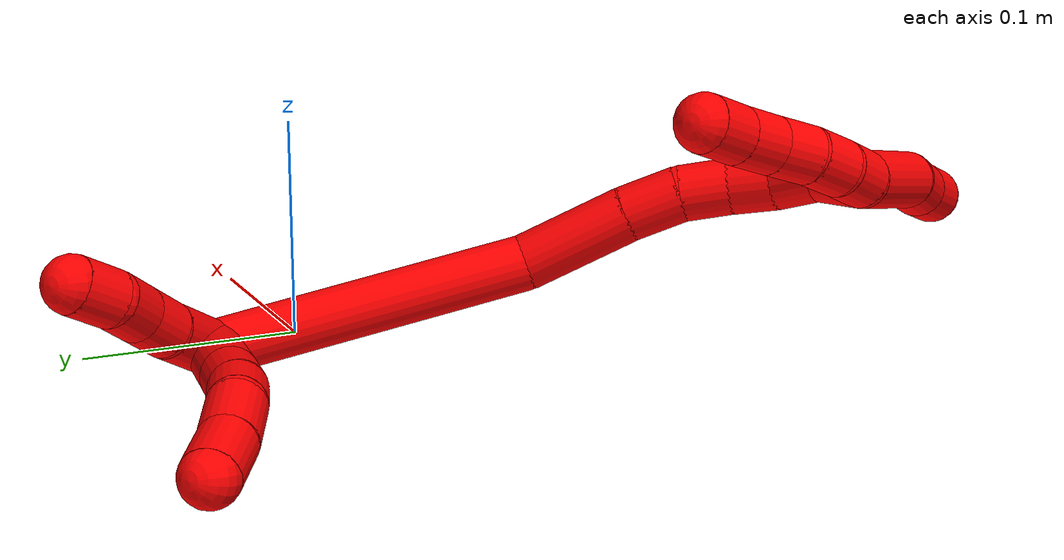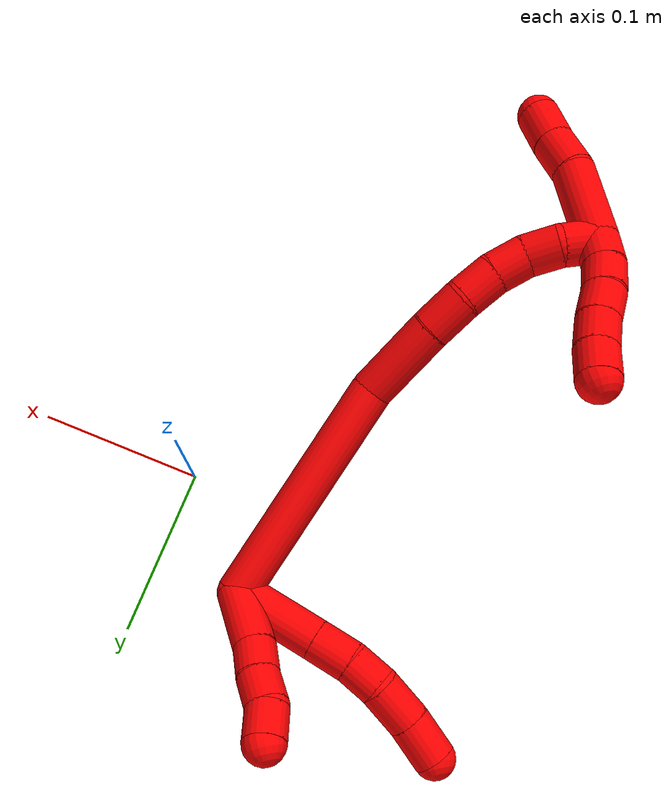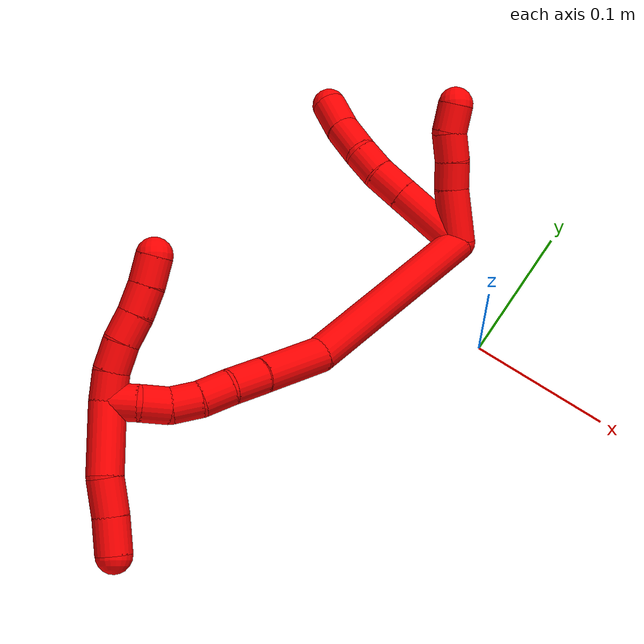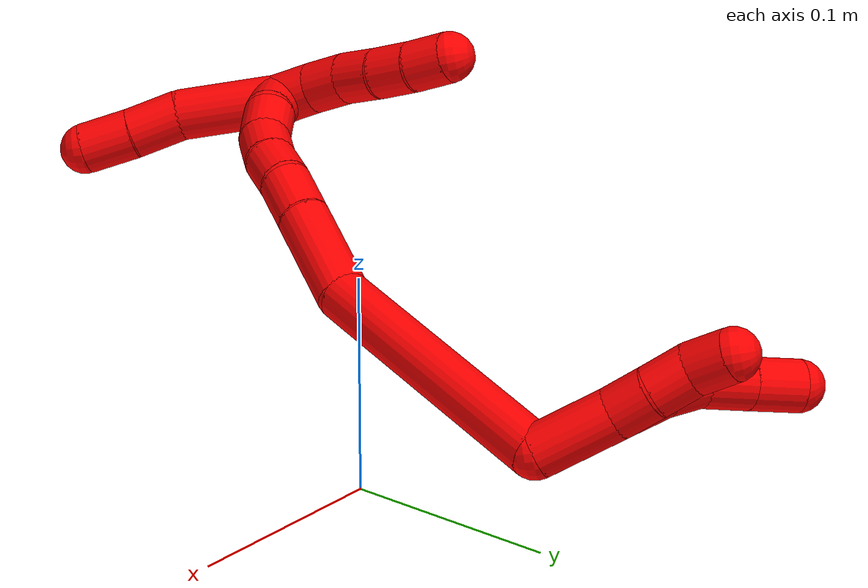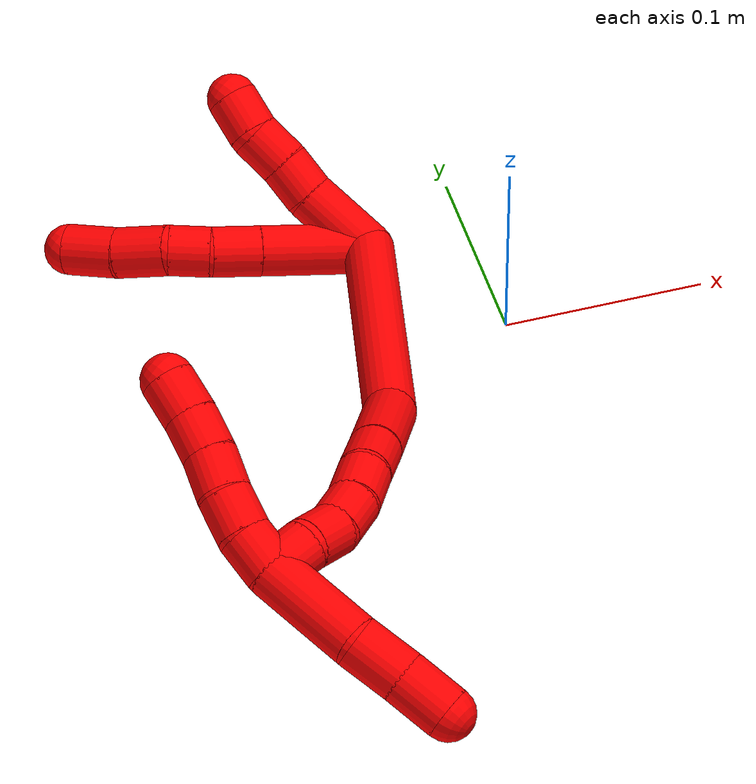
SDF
<sdf version="1.7">
 <world name="default">
  <model name="photoneo_s_sensor">
   <static>1</static>
   <pose>0 0 2 1.57079 1.57079 3.14159</pose>
   <link name="link">
    <inertial><mass>0.1</mass></inertial>
    <sensor name="sensor" type="depth">
     <update_rate>30</update_rate>
     <camera>
      <horizontal_fov>1.22</horizontal_fov>
      <image><width>1920</width><height>1200</height><format>B8G8R8</format></image>
      <clip><near>0.1</near><far>4</far></clip>
      <depth_camera><output>points</output></depth_camera>
     </camera>
     <plugin name="camera_plugin" filename="libgazebo_ros_depth_camera.so">
      <baseline>0.2</baseline>
      <alwaysOn>1</alwaysOn>
      <updateRate>0.0</updateRate>
      <cameraName>camera_ir</cameraName>
      <imageTopicName>/camera/color/image_raw</imageTopicName>
      <cameraInfoTopicName>/camera/color/camera_info</cameraInfoTopicName>
      <depthImageTopicName>/camera/depth/image_raw</depthImageTopicName>
      <depthImageCameraInfoTopicName>/camera/depth/camera_info</depthImageCameraInfoTopicName>
      <pointCloudTopicName>/camera/depth/points</pointCloudTopicName>
      <frameName>fr_optical</frameName>
      <pointCloudCutoff>0.1</pointCloudCutoff>
      <pointCloudCutoffMax>2.0</pointCloudCutoffMax>
      <distortionK1>0</distortionK1>
      <distortionK2>0</distortionK2>
      <distortionK3>0</distortionK3>
      <distortionT1>0</distortionT1>
      <distortionT2>0</distortionT2>
      <CxPrime>0</CxPrime>
      <Cx>0</Cx>
      <Cy>0</Cy>
      <focalLength>0</focalLength>
      <hackBaseline>0</hackBaseline>
     </plugin>
    </sensor>
   </link>
  </model>
  <model name="bin">
   <static>1</static>
   <link name="bottom">
    <collision name="collision-bottom">
     <pose>0 0 -0.01 0 -0 0</pose>
     <geometry><box><size>0.8 0.6 0.02</size></box></geometry>
     <surface>
      <friction><ode><mu>100</mu><mu2>100</mu2></ode></friction>
      <contact><collide_bitmask>65535</collide_bitmask></contact>
     </surface>
    </collision>
   </link>
   <link name="west_wall">
    <collision name="collision-west_wall">
     <pose>-0.41 0 0.1 0 -0 0</pose>
     <geometry><box><size>0.02 0.6 0.2</size></box></geometry>
     <surface>
      <friction><ode><mu>100</mu><mu2>100</mu2></ode></friction>
      <contact><collide_bitmask>65535</collide_bitmask></contact>
     </surface>
    </collision>
   </link>
   <link name="east_wall">
    <collision name="collision-east_wall">
     <pose>0.41 0 0.1 0 -0 0</pose>
     <geometry><box><size>0.02 0.6 0.2</size></box></geometry>
     <surface>
      <friction><ode><mu>100</mu><mu2>100</mu2></ode></friction>
      <contact><collide_bitmask>65535</collide_bitmask></contact>
     </surface>
    </collision>
   </link>
   <link name="south_wall">
    <collision name="collision-south_wall">
     <pose>0 -0.31 0.1 0 -0 0</pose>
     <geometry><box><size>0.8 0.02 0.2</size></box></geometry>
     <surface>
      <friction><ode><mu>100</mu><mu2>100</mu2></ode></friction>
      <contact><collide_bitmask>65535</collide_bitmask></contact>
     </surface>
    </collision>
   </link>
   <link name="north_wall">
    <collision name="collision-north_wall">
     <pose>0 0.31 0.1 0 -0 0</pose>
     <geometry><box><size>0.8 0.02 0.2</size></box></geometry>
     <surface>
      <friction><ode><mu>100</mu><mu2>100</mu2></ode></friction>
      <contact><collide_bitmask>65535</collide_bitmask></contact>
     </surface>
    </collision>
   </link>
  </model>
  <model name="2">
   <static>0</static>
   <link name="2">
    <collision name="collision-cylinder-e_1_2_8">
     <pose>-0.005874 -0.018274 0.018662 0.774912 -0.221209 -0.09058</pose>
     <geometry><cylinder><radius>0.0125</radius><length>0.053543</length></cylinder></geometry>
     <surface>
      <friction><ode><mu>1.16</mu><mu2>1.16</mu2><slip1>0</slip1><slip2>0</slip2></ode></friction>
      <contact><ode><kp>1e+06</kp><kd>1</kd><max_vel>0</max_vel><min_depth>0.001</min_depth></ode></contact>
     </surface>
    </collision>
    <visual name="visual-cylinder-e_1_2_8">
     <pose>-0.005874 -0.018274 0.018662 0.774912 -0.221209 -0.09058</pose>
     <geometry><cylinder><radius>0.0125</radius><length>0.053543</length></cylinder></geometry>
     <material><ambient>1 0 0 1</ambient></material>
    </visual>
    <collision name="collision-cylinder-e_2_8_9">
     <pose>-0.014408 -0.044685 0.045721 0.769558 -0.223733 -0.090921</pose>
     <geometry><cylinder><radius>0.0125</radius><length>0.023984</length></cylinder></geometry>
     <surface>
      <friction><ode><mu>1.16</mu><mu2>1.16</mu2><slip1>0</slip1><slip2>0</slip2></ode></friction>
      <contact><ode><kp>1e+06</kp><kd>1</kd><max_vel>0</max_vel><min_depth>0.001</min_depth></ode></contact>
     </surface>
    </collision>
    <visual name="visual-cylinder-e_2_8_9">
     <pose>-0.014408 -0.044685 0.045721 0.769558 -0.223733 -0.090921</pose>
     <geometry><cylinder><radius>0.0125</radius><length>0.023984</length></cylinder></geometry>
     <material><ambient>1 0 0 1</ambient></material>
    </visual>
    <collision name="collision-cylinder-e_3_9_10">
     <pose>-0.019918 -0.05845 0.062232 0.606615 -0.280911 -0.08844</pose>
     <geometry><cylinder><radius>0.0125</radius><length>0.020553</length></cylinder></geometry>
     <surface>
      <friction><ode><mu>1.16</mu><mu2>1.16</mu2><slip1>0</slip1><slip2>0</slip2></ode></friction>
      <contact><ode><kp>1e+06</kp><kd>1</kd><max_vel>0</max_vel><min_depth>0.001</min_depth></ode></contact>
     </surface>
    </collision>
    <visual name="visual-cylinder-e_3_9_10">
     <pose>-0.019918 -0.05845 0.062232 0.606615 -0.280911 -0.08844</pose>
     <geometry><cylinder><radius>0.0125</radius><length>0.020553</length></cylinder></geometry>
     <material><ambient>1 0 0 1</ambient></material>
    </visual>
    <collision name="collision-cylinder-e_4_10_11">
     <pose>-0.029231 -0.068937 0.080655 0.44032 -0.515821 -0.117927</pose>
     <geometry><cylinder><radius>0.0125</radius><length>0.026208</length></cylinder></geometry>
     <surface>
      <friction><ode><mu>1.16</mu><mu2>1.16</mu2><slip1>0</slip1><slip2>0</slip2></ode></friction>
      <contact><ode><kp>1e+06</kp><kd>1</kd><max_vel>0</max_vel><min_depth>0.001</min_depth></ode></contact>
     </surface>
    </collision>
    <visual name="visual-cylinder-e_4_10_11">
     <pose>-0.029231 -0.068937 0.080655 0.44032 -0.515821 -0.117927</pose>
     <geometry><cylinder><radius>0.0125</radius><length>0.026208</length></cylinder></geometry>
     <material><ambient>1 0 0 1</ambient></material>
    </visual>
    <collision name="collision-cylinder-e_5_11_6">
     <pose>-0.04126 -0.077468 0.101959 0.322405 -0.447745 -0.074017</pose>
     <geometry><cylinder><radius>0.0125</radius><length>0.025712</length></cylinder></geometry>
     <surface>
      <friction><ode><mu>1.16</mu><mu2>1.16</mu2><slip1>0</slip1><slip2>0</slip2></ode></friction>
      <contact><ode><kp>1e+06</kp><kd>1</kd><max_vel>0</max_vel><min_depth>0.001</min_depth></ode></contact>
     </surface>
    </collision>
    <visual name="visual-cylinder-e_5_11_6">
     <pose>-0.04126 -0.077468 0.101959 0.322405 -0.447745 -0.074017</pose>
     <geometry><cylinder><radius>0.0125</radius><length>0.025712</length></cylinder></geometry>
     <material><ambient>1 0 0 1</ambient></material>
    </visual>
    <collision name="collision-cylinder-e_1_2_12">
     <pose>0.004882 -0.003137 0.018576 0.167284 0.253571 0.021373</pose>
     <geometry><cylinder><radius>0.0125</radius><length>0.038922</length></cylinder></geometry>
     <surface>
      <friction><ode><mu>1.16</mu><mu2>1.16</mu2><slip1>0</slip1><slip2>0</slip2></ode></friction>
      <contact><ode><kp>1e+06</kp><kd>1</kd><max_vel>0</max_vel><min_depth>0.001</min_depth></ode></contact>
     </surface>
    </collision>
    <visual name="visual-cylinder-e_1_2_12">
     <pose>0.004882 -0.003137 0.018576 0.167284 0.253571 0.021373</pose>
     <geometry><cylinder><radius>0.0125</radius><length>0.038922</length></cylinder></geometry>
     <material><ambient>1 0 0 1</ambient></material>
    </visual>
    <collision name="collision-cylinder-e_2_12_13">
     <pose>0.013597 -0.006749 0.046401 0.051385 0.392363 0.010214</pose>
     <geometry><cylinder><radius>0.0125</radius><length>0.020047</length></cylinder></geometry>
     <surface>
      <friction><ode><mu>1.16</mu><mu2>1.16</mu2><slip1>0</slip1><slip2>0</slip2></ode></friction>
      <contact><ode><kp>1e+06</kp><kd>1</kd><max_vel>0</max_vel><min_depth>0.001</min_depth></ode></contact>
     </surface>
    </collision>
    <visual name="visual-cylinder-e_2_12_13">
     <pose>0.013597 -0.006749 0.046401 0.051385 0.392363 0.010214</pose>
     <geometry><cylinder><radius>0.0125</radius><length>0.020047</length></cylinder></geometry>
     <material><ambient>1 0 0 1</ambient></material>
    </visual>
    <collision name="collision-cylinder-e_3_13_14">
     <pose>0.020678 -0.008997 0.065202 0.183471 0.322763 0.02995</pose>
     <geometry><cylinder><radius>0.0125</radius><length>0.020487</length></cylinder></geometry>
     <surface>
      <friction><ode><mu>1.16</mu><mu2>1.16</mu2><slip1>0</slip1><slip2>0</slip2></ode></friction>
      <contact><ode><kp>1e+06</kp><kd>1</kd><max_vel>0</max_vel><min_depth>0.001</min_depth></ode></contact>
     </surface>
    </collision>
    <visual name="visual-cylinder-e_3_13_14">
     <pose>0.020678 -0.008997 0.065202 0.183471 0.322763 0.02995</pose>
     <geometry><cylinder><radius>0.0125</radius><length>0.020487</length></cylinder></geometry>
     <material><ambient>1 0 0 1</ambient></material>
    </visual>
    <collision name="collision-cylinder-e_4_14_5">
     <pose>0.027346 -0.009072 0.08429 -0.176156 0.339303 -0.030251</pose>
     <geometry><cylinder><radius>0.0125</radius><length>0.020545</length></cylinder></geometry>
     <surface>
      <friction><ode><mu>1.16</mu><mu2>1.16</mu2><slip1>0</slip1><slip2>0</slip2></ode></friction>
      <contact><ode><kp>1e+06</kp><kd>1</kd><max_vel>0</max_vel><min_depth>0.001</min_depth></ode></contact>
     </surface>
    </collision>
    <visual name="visual-cylinder-e_4_14_5">
     <pose>0.027346 -0.009072 0.08429 -0.176156 0.339303 -0.030251</pose>
     <geometry><cylinder><radius>0.0125</radius><length>0.020545</length></cylinder></geometry>
     <material><ambient>1 0 0 1</ambient></material>
    </visual>
    <collision name="collision-cylinder-e_1_2_15">
     <pose>0.011721 -0.054806 -0.043312 2.23958 0.166239 0.340718</pose>
     <geometry><cylinder><radius>0.0125</radius><length>0.141661</length></cylinder></geometry>
     <surface>
      <friction><ode><mu>1.16</mu><mu2>1.16</mu2><slip1>0</slip1><slip2>0</slip2></ode></friction>
      <contact><ode><kp>1e+06</kp><kd>1</kd><max_vel>0</max_vel><min_depth>0.001</min_depth></ode></contact>
     </surface>
    </collision>
    <visual name="visual-cylinder-e_1_2_15">
     <pose>0.011721 -0.054806 -0.043312 2.23958 0.166239 0.340718</pose>
     <geometry><cylinder><radius>0.0125</radius><length>0.141661</length></cylinder></geometry>
     <material><ambient>1 0 0 1</ambient></material>
    </visual>
    <collision name="collision-cylinder-e_2_15_16">
     <pose>0.031608 -0.131498 -0.095309 1.94855 0.333836 0.48642</pose>
     <geometry><cylinder><radius>0.0125</radius><length>0.049845</length></cylinder></geometry>
     <surface>
      <friction><ode><mu>1.16</mu><mu2>1.16</mu2><slip1>0</slip1><slip2>0</slip2></ode></friction>
      <contact><ode><kp>1e+06</kp><kd>1</kd><max_vel>0</max_vel><min_depth>0.001</min_depth></ode></contact>
     </surface>
    </collision>
    <visual name="visual-cylinder-e_2_15_16">
     <pose>0.031608 -0.131498 -0.095309 1.94855 0.333836 0.48642</pose>
     <geometry><cylinder><radius>0.0125</radius><length>0.049845</length></cylinder></geometry>
     <material><ambient>1 0 0 1</ambient></material>
    </visual>
    <collision name="collision-cylinder-e_3_16_17">
     <pose>0.042882 -0.164841 -0.108341 1.93343 0.248433 0.357964</pose>
     <geometry><cylinder><radius>0.0125</radius><length>0.025283</length></cylinder></geometry>
     <surface>
      <friction><ode><mu>1.16</mu><mu2>1.16</mu2><slip1>0</slip1><slip2>0</slip2></ode></friction>
      <contact><ode><kp>1e+06</kp><kd>1</kd><max_vel>0</max_vel><min_depth>0.001</min_depth></ode></contact>
     </surface>
    </collision>
    <visual name="visual-cylinder-e_3_16_17">
     <pose>0.042882 -0.164841 -0.108341 1.93343 0.248433 0.357964</pose>
     <geometry><cylinder><radius>0.0125</radius><length>0.025283</length></cylinder></geometry>
     <material><ambient>1 0 0 1</ambient></material>
    </visual>
    <collision name="collision-cylinder-e_4_17_18">
     <pose>0.046409 -0.186375 -0.116858 1.96319 0.038324 0.057328</pose>
     <geometry><cylinder><radius>0.0125</radius><length>0.021829</length></cylinder></geometry>
     <surface>
      <friction><ode><mu>1.16</mu><mu2>1.16</mu2><slip1>0</slip1><slip2>0</slip2></ode></friction>
      <contact><ode><kp>1e+06</kp><kd>1</kd><max_vel>0</max_vel><min_depth>0.001</min_depth></ode></contact>
     </surface>
    </collision>
    <visual name="visual-cylinder-e_4_17_18">
     <pose>0.046409 -0.186375 -0.116858 1.96319 0.038324 0.057328</pose>
     <geometry><cylinder><radius>0.0125</radius><length>0.021829</length></cylinder></geometry>
     <material><ambient>1 0 0 1</ambient></material>
    </visual>
    <collision name="collision-cylinder-e_5_18_19">
     <pose>0.046652 -0.206524 -0.123223 1.7853 -0.016959 -0.021051</pose>
     <geometry><cylinder><radius>0.0125</radius><length>0.020617</length></cylinder></geometry>
     <surface>
      <friction><ode><mu>1.16</mu><mu2>1.16</mu2><slip1>0</slip1><slip2>0</slip2></ode></friction>
      <contact><ode><kp>1e+06</kp><kd>1</kd><max_vel>0</max_vel><min_depth>0.001</min_depth></ode></contact>
     </surface>
    </collision>
    <visual name="visual-cylinder-e_5_18_19">
     <pose>0.046652 -0.206524 -0.123223 1.7853 -0.016959 -0.021051</pose>
     <geometry><cylinder><radius>0.0125</radius><length>0.020617</length></cylinder></geometry>
     <material><ambient>1 0 0 1</ambient></material>
    </visual>
    <collision name="collision-cylinder-e_6_19_20">
     <pose>0.047097 -0.226592 -0.12467 1.49625 0.061672 0.057241</pose>
     <geometry><cylinder><radius>0.0125</radius><length>0.02009</length></cylinder></geometry>
     <surface>
      <friction><ode><mu>1.16</mu><mu2>1.16</mu2><slip1>0</slip1><slip2>0</slip2></ode></friction>
      <contact><ode><kp>1e+06</kp><kd>1</kd><max_vel>0</max_vel><min_depth>0.001</min_depth></ode></contact>
     </surface>
    </collision>
    <visual name="visual-cylinder-e_6_19_20">
     <pose>0.047097 -0.226592 -0.12467 1.49625 0.061672 0.057241</pose>
     <geometry><cylinder><radius>0.0125</radius><length>0.02009</length></cylinder></geometry>
     <material><ambient>1 0 0 1</ambient></material>
    </visual>
    <collision name="collision-cylinder-e_7_20_1">
     <pose>0.045095 -0.246546 -0.12299 1.4773 -0.256281 -0.233591</pose>
     <geometry><cylinder><radius>0.0125</radius><length>0.020674</length></cylinder></geometry>
     <surface>
      <friction><ode><mu>1.16</mu><mu2>1.16</mu2><slip1>0</slip1><slip2>0</slip2></ode></friction>
      <contact><ode><kp>1e+06</kp><kd>1</kd><max_vel>0</max_vel><min_depth>0.001</min_depth></ode></contact>
     </surface>
    </collision>
    <visual name="visual-cylinder-e_7_20_1">
     <pose>0.045095 -0.246546 -0.12299 1.4773 -0.256281 -0.233591</pose>
     <geometry><cylinder><radius>0.0125</radius><length>0.020674</length></cylinder></geometry>
     <material><ambient>1 0 0 1</ambient></material>
    </visual>
    <collision name="collision-cylinder-e_1_1_21">
     <pose>0.044868 -0.255486 -0.1124 -0.104826 0.241668 -0.01274</pose>
     <geometry><cylinder><radius>0.0125</radius><length>0.02</length></cylinder></geometry>
     <surface>
      <friction><ode><mu>1.16</mu><mu2>1.16</mu2><slip1>0</slip1><slip2>0</slip2></ode></friction>
      <contact><ode><kp>1e+06</kp><kd>1</kd><max_vel>0</max_vel><min_depth>0.001</min_depth></ode></contact>
     </surface>
    </collision>
    <visual name="visual-cylinder-e_1_1_21">
     <pose>0.044868 -0.255486 -0.1124 -0.104826 0.241668 -0.01274</pose>
     <geometry><cylinder><radius>0.0125</radius><length>0.02</length></cylinder></geometry>
     <material><ambient>1 0 0 1</ambient></material>
    </visual>
    <collision name="collision-cylinder-e_2_21_22">
     <pose>0.050219 -0.251541 -0.093651 -0.311728 0.300212 -0.047523</pose>
     <geometry><cylinder><radius>0.0125</radius><length>0.02</length></cylinder></geometry>
     <surface>
      <friction><ode><mu>1.16</mu><mu2>1.16</mu2><slip1>0</slip1><slip2>0</slip2></ode></friction>
      <contact><ode><kp>1e+06</kp><kd>1</kd><max_vel>0</max_vel><min_depth>0.001</min_depth></ode></contact>
     </surface>
    </collision>
    <visual name="visual-cylinder-e_2_21_22">
     <pose>0.050219 -0.251541 -0.093651 -0.311728 0.300212 -0.047523</pose>
     <geometry><cylinder><radius>0.0125</radius><length>0.02</length></cylinder></geometry>
     <material><ambient>1 0 0 1</ambient></material>
    </visual>
    <collision name="collision-cylinder-e_3_22_23">
     <pose>0.055707 -0.244275 -0.07591 -0.46468 0.255891 -0.060861</pose>
     <geometry><cylinder><radius>0.0125</radius><length>0.02</length></cylinder></geometry>
     <surface>
      <friction><ode><mu>1.16</mu><mu2>1.16</mu2><slip1>0</slip1><slip2>0</slip2></ode></friction>
      <contact><ode><kp>1e+06</kp><kd>1</kd><max_vel>0</max_vel><min_depth>0.001</min_depth></ode></contact>
     </surface>
    </collision>
    <visual name="visual-cylinder-e_3_22_23">
     <pose>0.055707 -0.244275 -0.07591 -0.46468 0.255891 -0.060861</pose>
     <geometry><cylinder><radius>0.0125</radius><length>0.02</length></cylinder></geometry>
     <material><ambient>1 0 0 1</ambient></material>
    </visual>
    <collision name="collision-cylinder-e_4_23_24">
     <pose>0.060573 -0.236602 -0.058129 -0.350438 0.23566 -0.041908</pose>
     <geometry><cylinder><radius>0.0125</radius><length>0.02</length></cylinder></geometry>
     <surface>
      <friction><ode><mu>1.16</mu><mu2>1.16</mu2><slip1>0</slip1><slip2>0</slip2></ode></friction>
      <contact><ode><kp>1e+06</kp><kd>1</kd><max_vel>0</max_vel><min_depth>0.001</min_depth></ode></contact>
     </surface>
    </collision>
    <visual name="visual-cylinder-e_4_23_24">
     <pose>0.060573 -0.236602 -0.058129 -0.350438 0.23566 -0.041908</pose>
     <geometry><cylinder><radius>0.0125</radius><length>0.02</length></cylinder></geometry>
     <material><ambient>1 0 0 1</ambient></material>
    </visual>
    <collision name="collision-cylinder-e_5_24_4">
     <pose>0.065266 -0.230961 -0.039555 -0.239233 0.238015 -0.028741</pose>
     <geometry><cylinder><radius>0.0125</radius><length>0.02</length></cylinder></geometry>
     <surface>
      <friction><ode><mu>1.16</mu><mu2>1.16</mu2><slip1>0</slip1><slip2>0</slip2></ode></friction>
      <contact><ode><kp>1e+06</kp><kd>1</kd><max_vel>0</max_vel><min_depth>0.001</min_depth></ode></contact>
     </surface>
    </collision>
    <visual name="visual-cylinder-e_5_24_4">
     <pose>0.065266 -0.230961 -0.039555 -0.239233 0.238015 -0.028741</pose>
     <geometry><cylinder><radius>0.0125</radius><length>0.02</length></cylinder></geometry>
     <material><ambient>1 0 0 1</ambient></material>
    </visual>
    <collision name="collision-cylinder-e_1_1_25">
     <pose>0.042316 -0.257412 -0.146746 3.10475 -0.006452 -0.346756</pose>
     <geometry><cylinder><radius>0.0125</radius><length>0.049415</length></cylinder></geometry>
     <surface>
      <friction><ode><mu>1.16</mu><mu2>1.16</mu2><slip1>0</slip1><slip2>0</slip2></ode></friction>
      <contact><ode><kp>1e+06</kp><kd>1</kd><max_vel>0</max_vel><min_depth>0.001</min_depth></ode></contact>
     </surface>
    </collision>
    <visual name="visual-cylinder-e_1_1_25">
     <pose>0.042316 -0.257412 -0.146746 3.10475 -0.006452 -0.346756</pose>
     <geometry><cylinder><radius>0.0125</radius><length>0.049415</length></cylinder></geometry>
     <material><ambient>1 0 0 1</ambient></material>
    </visual>
    <collision name="collision-cylinder-e_2_25_26">
     <pose>0.040432 -0.256274 -0.183867 -2.97828 -0.136029 1.38832</pose>
     <geometry><cylinder><radius>0.0125</radius><length>0.025432</length></cylinder></geometry>
     <surface>
      <friction><ode><mu>1.16</mu><mu2>1.16</mu2><slip1>0</slip1><slip2>0</slip2></ode></friction>
      <contact><ode><kp>1e+06</kp><kd>1</kd><max_vel>0</max_vel><min_depth>0.001</min_depth></ode></contact>
     </surface>
    </collision>
    <visual name="visual-cylinder-e_2_25_26">
     <pose>0.040432 -0.256274 -0.183867 -2.97828 -0.136029 1.38832</pose>
     <geometry><cylinder><radius>0.0125</radius><length>0.025432</length></cylinder></geometry>
     <material><ambient>1 0 0 1</ambient></material>
    </visual>
    <collision name="collision-cylinder-e_3_26_3">
     <pose>0.03731 -0.253117 -0.208748 -3.05282 -0.111346 1.79577</pose>
     <geometry><cylinder><radius>0.0125</radius><length>0.025153</length></cylinder></geometry>
     <surface>
      <friction><ode><mu>1.16</mu><mu2>1.16</mu2><slip1>0</slip1><slip2>0</slip2></ode></friction>
      <contact><ode><kp>1e+06</kp><kd>1</kd><max_vel>0</max_vel><min_depth>0.001</min_depth></ode></contact>
     </surface>
    </collision>
    <visual name="visual-cylinder-e_3_26_3">
     <pose>0.03731 -0.253117 -0.208748 -3.05282 -0.111346 1.79577</pose>
     <geometry><cylinder><radius>0.0125</radius><length>0.025153</length></cylinder></geometry>
     <material><ambient>1 0 0 1</ambient></material>
    </visual>
    <collision name="collision-sphere-3">
     <pose>0.035913 -0.252009 -0.221197 0 -0 0</pose>
     <geometry><sphere><radius>0.0125</radius></sphere></geometry>
     <surface>
      <friction><ode><mu>1.16</mu><mu2>1.16</mu2><slip1>0</slip1><slip2>0</slip2></ode></friction>
      <contact><ode><kp>1e+06</kp><kd>1</kd><max_vel>0</max_vel><min_depth>0.001</min_depth></ode></contact>
     </surface>
    </collision>
    <visual name="visual-sphere-3">
     <pose>0.035913 -0.252009 -0.221197 0 -0 0</pose>
     <geometry><sphere><radius>0.0125</radius></sphere></geometry>
     <material><ambient>1 0 0 1</ambient></material>
    </visual>
    <collision name="collision-sphere-26">
     <pose>0.038707 -0.254225 -0.196298 0 -0 0</pose>
     <geometry><sphere><radius>0.0125</radius></sphere></geometry>
     <surface>
      <friction><ode><mu>1.16</mu><mu2>1.16</mu2><slip1>0</slip1><slip2>0</slip2></ode></friction>
      <contact><ode><kp>1e+06</kp><kd>1</kd><max_vel>0</max_vel><min_depth>0.001</min_depth></ode></contact>
     </surface>
    </collision>
    <visual name="visual-sphere-26">
     <pose>0.038707 -0.254225 -0.196298 0 -0 0</pose>
     <geometry><sphere><radius>0.0125</radius></sphere></geometry>
     <material><ambient>1 0 0 1</ambient></material>
    </visual>
    <collision name="collision-sphere-25">
     <pose>0.042156 -0.258322 -0.171436 0 -0 0</pose>
     <geometry><sphere><radius>0.0125</radius></sphere></geometry>
     <surface>
      <friction><ode><mu>1.16</mu><mu2>1.16</mu2><slip1>0</slip1><slip2>0</slip2></ode></friction>
      <contact><ode><kp>1e+06</kp><kd>1</kd><max_vel>0</max_vel><min_depth>0.001</min_depth></ode></contact>
     </surface>
    </collision>
    <visual name="visual-sphere-25">
     <pose>0.042156 -0.258322 -0.171436 0 -0 0</pose>
     <geometry><sphere><radius>0.0125</radius></sphere></geometry>
     <material><ambient>1 0 0 1</ambient></material>
    </visual>
    <collision name="collision-sphere-4">
     <pose>0.067623 -0.228658 -0.030114 0 -0 0</pose>
     <geometry><sphere><radius>0.0125</radius></sphere></geometry>
     <surface>
      <friction><ode><mu>1.16</mu><mu2>1.16</mu2><slip1>0</slip1><slip2>0</slip2></ode></friction>
      <contact><ode><kp>1e+06</kp><kd>1</kd><max_vel>0</max_vel><min_depth>0.001</min_depth></ode></contact>
     </surface>
    </collision>
    <visual name="visual-sphere-4">
     <pose>0.067623 -0.228658 -0.030114 0 -0 0</pose>
     <geometry><sphere><radius>0.0125</radius></sphere></geometry>
     <material><ambient>1 0 0 1</ambient></material>
    </visual>
    <collision name="collision-sphere-24">
     <pose>0.062908 -0.233263 -0.048997 0 -0 0</pose>
     <geometry><sphere><radius>0.0125</radius></sphere></geometry>
     <surface>
      <friction><ode><mu>1.16</mu><mu2>1.16</mu2><slip1>0</slip1><slip2>0</slip2></ode></friction>
      <contact><ode><kp>1e+06</kp><kd>1</kd><max_vel>0</max_vel><min_depth>0.001</min_depth></ode></contact>
     </surface>
    </collision>
    <visual name="visual-sphere-24">
     <pose>0.062908 -0.233263 -0.048997 0 -0 0</pose>
     <geometry><sphere><radius>0.0125</radius></sphere></geometry>
     <material><ambient>1 0 0 1</ambient></material>
    </visual>
    <collision name="collision-sphere-23">
     <pose>0.058238 -0.23994 -0.067262 0 -0 0</pose>
     <geometry><sphere><radius>0.0125</radius></sphere></geometry>
     <surface>
      <friction><ode><mu>1.16</mu><mu2>1.16</mu2><slip1>0</slip1><slip2>0</slip2></ode></friction>
      <contact><ode><kp>1e+06</kp><kd>1</kd><max_vel>0</max_vel><min_depth>0.001</min_depth></ode></contact>
     </surface>
    </collision>
    <visual name="visual-sphere-23">
     <pose>0.058238 -0.23994 -0.067262 0 -0 0</pose>
     <geometry><sphere><radius>0.0125</radius></sphere></geometry>
     <material><ambient>1 0 0 1</ambient></material>
    </visual>
    <collision name="collision-sphere-22">
     <pose>0.053176 -0.248611 -0.084559 0 -0 0</pose>
     <geometry><sphere><radius>0.0125</radius></sphere></geometry>
     <surface>
      <friction><ode><mu>1.16</mu><mu2>1.16</mu2><slip1>0</slip1><slip2>0</slip2></ode></friction>
      <contact><ode><kp>1e+06</kp><kd>1</kd><max_vel>0</max_vel><min_depth>0.001</min_depth></ode></contact>
     </surface>
    </collision>
    <visual name="visual-sphere-22">
     <pose>0.053176 -0.248611 -0.084559 0 -0 0</pose>
     <geometry><sphere><radius>0.0125</radius></sphere></geometry>
     <material><ambient>1 0 0 1</ambient></material>
    </visual>
    <collision name="collision-sphere-21">
     <pose>0.047262 -0.25447 -0.102744 0 -0 0</pose>
     <geometry><sphere><radius>0.0125</radius></sphere></geometry>
     <surface>
      <friction><ode><mu>1.16</mu><mu2>1.16</mu2><slip1>0</slip1><slip2>0</slip2></ode></friction>
      <contact><ode><kp>1e+06</kp><kd>1</kd><max_vel>0</max_vel><min_depth>0.001</min_depth></ode></contact>
     </surface>
    </collision>
    <visual name="visual-sphere-21">
     <pose>0.047262 -0.25447 -0.102744 0 -0 0</pose>
     <geometry><sphere><radius>0.0125</radius></sphere></geometry>
     <material><ambient>1 0 0 1</ambient></material>
    </visual>
    <collision name="collision-sphere-1">
     <pose>0.042475 -0.256502 -0.122056 0 -0 0</pose>
     <geometry><sphere><radius>0.0125</radius></sphere></geometry>
     <surface>
      <friction><ode><mu>1.16</mu><mu2>1.16</mu2><slip1>0</slip1><slip2>0</slip2></ode></friction>
      <contact><ode><kp>1e+06</kp><kd>1</kd><max_vel>0</max_vel><min_depth>0.001</min_depth></ode></contact>
     </surface>
    </collision>
    <visual name="visual-sphere-1">
     <pose>0.042475 -0.256502 -0.122056 0 -0 0</pose>
     <geometry><sphere><radius>0.0125</radius></sphere></geometry>
     <material><ambient>1 0 0 1</ambient></material>
    </visual>
    <collision name="collision-sphere-6">
     <pose>-0.046826 -0.08114 0.112951 0 -0 0</pose>
     <geometry><sphere><radius>0.0125</radius></sphere></geometry>
     <surface>
      <friction><ode><mu>1.16</mu><mu2>1.16</mu2><slip1>0</slip1><slip2>0</slip2></ode></friction>
      <contact><ode><kp>1e+06</kp><kd>1</kd><max_vel>0</max_vel><min_depth>0.001</min_depth></ode></contact>
     </surface>
    </collision>
    <visual name="visual-sphere-6">
     <pose>-0.046826 -0.08114 0.112951 0 -0 0</pose>
     <geometry><sphere><radius>0.0125</radius></sphere></geometry>
     <material><ambient>1 0 0 1</ambient></material>
    </visual>
    <collision name="collision-sphere-11">
     <pose>-0.035694 -0.073796 0.090967 0 -0 0</pose>
     <geometry><sphere><radius>0.0125</radius></sphere></geometry>
     <surface>
      <friction><ode><mu>1.16</mu><mu2>1.16</mu2><slip1>0</slip1><slip2>0</slip2></ode></friction>
      <contact><ode><kp>1e+06</kp><kd>1</kd><max_vel>0</max_vel><min_depth>0.001</min_depth></ode></contact>
     </surface>
    </collision>
    <visual name="visual-sphere-11">
     <pose>-0.035694 -0.073796 0.090967 0 -0 0</pose>
     <geometry><sphere><radius>0.0125</radius></sphere></geometry>
     <material><ambient>1 0 0 1</ambient></material>
    </visual>
    <collision name="collision-sphere-10">
     <pose>-0.022767 -0.064079 0.070344 0 -0 0</pose>
     <geometry><sphere><radius>0.0125</radius></sphere></geometry>
     <surface>
      <friction><ode><mu>1.16</mu><mu2>1.16</mu2><slip1>0</slip1><slip2>0</slip2></ode></friction>
      <contact><ode><kp>1e+06</kp><kd>1</kd><max_vel>0</max_vel><min_depth>0.001</min_depth></ode></contact>
     </surface>
    </collision>
    <visual name="visual-sphere-10">
     <pose>-0.022767 -0.064079 0.070344 0 -0 0</pose>
     <geometry><sphere><radius>0.0125</radius></sphere></geometry>
     <material><ambient>1 0 0 1</ambient></material>
    </visual>
    <collision name="collision-sphere-9">
     <pose>-0.017069 -0.052821 0.05412 0 -0 0</pose>
     <geometry><sphere><radius>0.0125</radius></sphere></geometry>
     <surface>
      <friction><ode><mu>1.16</mu><mu2>1.16</mu2><slip1>0</slip1><slip2>0</slip2></ode></friction>
      <contact><ode><kp>1e+06</kp><kd>1</kd><max_vel>0</max_vel><min_depth>0.001</min_depth></ode></contact>
     </surface>
    </collision>
    <visual name="visual-sphere-9">
     <pose>-0.017069 -0.052821 0.05412 0 -0 0</pose>
     <geometry><sphere><radius>0.0125</radius></sphere></geometry>
     <material><ambient>1 0 0 1</ambient></material>
    </visual>
    <collision name="collision-sphere-2">
     <geometry><sphere><radius>0.0125</radius></sphere></geometry>
     <surface>
      <friction><ode><mu>1.16</mu><mu2>1.16</mu2><slip1>0</slip1><slip2>0</slip2></ode></friction>
      <contact><ode><kp>1e+06</kp><kd>1</kd><max_vel>0</max_vel><min_depth>0.001</min_depth></ode></contact>
     </surface>
    </collision>
    <visual name="visual-sphere-2">
     <geometry><sphere><radius>0.0125</radius></sphere></geometry>
     <material><ambient>1 0 0 1</ambient></material>
    </visual>
    <collision name="collision-sphere-19">
     <pose>0.046478 -0.216594 -0.125417 0 -0 0</pose>
     <geometry><sphere><radius>0.0125</radius></sphere></geometry>
     <surface>
      <friction><ode><mu>1.16</mu><mu2>1.16</mu2><slip1>0</slip1><slip2>0</slip2></ode></friction>
      <contact><ode><kp>1e+06</kp><kd>1</kd><max_vel>0</max_vel><min_depth>0.001</min_depth></ode></contact>
     </surface>
    </collision>
    <visual name="visual-sphere-19">
     <pose>0.046478 -0.216594 -0.125417 0 -0 0</pose>
     <geometry><sphere><radius>0.0125</radius></sphere></geometry>
     <material><ambient>1 0 0 1</ambient></material>
    </visual>
    <collision name="collision-sphere-8">
     <pose>-0.011748 -0.036548 0.037323 0 -0 0</pose>
     <geometry><sphere><radius>0.0125</radius></sphere></geometry>
     <surface>
      <friction><ode><mu>1.16</mu><mu2>1.16</mu2><slip1>0</slip1><slip2>0</slip2></ode></friction>
      <contact><ode><kp>1e+06</kp><kd>1</kd><max_vel>0</max_vel><min_depth>0.001</min_depth></ode></contact>
     </surface>
    </collision>
    <visual name="visual-sphere-8">
     <pose>-0.011748 -0.036548 0.037323 0 -0 0</pose>
     <geometry><sphere><radius>0.0125</radius></sphere></geometry>
     <material><ambient>1 0 0 1</ambient></material>
    </visual>
    <collision name="collision-sphere-12">
     <pose>0.009764 -0.006273 0.037151 0 -0 0</pose>
     <geometry><sphere><radius>0.0125</radius></sphere></geometry>
     <surface>
      <friction><ode><mu>1.16</mu><mu2>1.16</mu2><slip1>0</slip1><slip2>0</slip2></ode></friction>
      <contact><ode><kp>1e+06</kp><kd>1</kd><max_vel>0</max_vel><min_depth>0.001</min_depth></ode></contact>
     </surface>
    </collision>
    <visual name="visual-sphere-12">
     <pose>0.009764 -0.006273 0.037151 0 -0 0</pose>
     <geometry><sphere><radius>0.0125</radius></sphere></geometry>
     <material><ambient>1 0 0 1</ambient></material>
    </visual>
    <collision name="collision-sphere-13">
     <pose>0.017429 -0.007225 0.05565 0 -0 0</pose>
     <geometry><sphere><radius>0.0125</radius></sphere></geometry>
     <surface>
      <friction><ode><mu>1.16</mu><mu2>1.16</mu2><slip1>0</slip1><slip2>0</slip2></ode></friction>
      <contact><ode><kp>1e+06</kp><kd>1</kd><max_vel>0</max_vel><min_depth>0.001</min_depth></ode></contact>
     </surface>
    </collision>
    <visual name="visual-sphere-13">
     <pose>0.017429 -0.007225 0.05565 0 -0 0</pose>
     <geometry><sphere><radius>0.0125</radius></sphere></geometry>
     <material><ambient>1 0 0 1</ambient></material>
    </visual>
    <collision name="collision-sphere-14">
     <pose>0.023927 -0.01077 0.074753 0 -0 0</pose>
     <geometry><sphere><radius>0.0125</radius></sphere></geometry>
     <surface>
      <friction><ode><mu>1.16</mu><mu2>1.16</mu2><slip1>0</slip1><slip2>0</slip2></ode></friction>
      <contact><ode><kp>1e+06</kp><kd>1</kd><max_vel>0</max_vel><min_depth>0.001</min_depth></ode></contact>
     </surface>
    </collision>
    <visual name="visual-sphere-14">
     <pose>0.023927 -0.01077 0.074753 0 -0 0</pose>
     <geometry><sphere><radius>0.0125</radius></sphere></geometry>
     <material><ambient>1 0 0 1</ambient></material>
    </visual>
    <collision name="collision-sphere-5">
     <pose>0.030765 -0.007374 0.093827 0 -0 0</pose>
     <geometry><sphere><radius>0.0125</radius></sphere></geometry>
     <surface>
      <friction><ode><mu>1.16</mu><mu2>1.16</mu2><slip1>0</slip1><slip2>0</slip2></ode></friction>
      <contact><ode><kp>1e+06</kp><kd>1</kd><max_vel>0</max_vel><min_depth>0.001</min_depth></ode></contact>
     </surface>
    </collision>
    <visual name="visual-sphere-5">
     <pose>0.030765 -0.007374 0.093827 0 -0 0</pose>
     <geometry><sphere><radius>0.0125</radius></sphere></geometry>
     <material><ambient>1 0 0 1</ambient></material>
    </visual>
    <collision name="collision-sphere-15">
     <pose>0.023441 -0.109612 -0.086624 0 -0 0</pose>
     <geometry><sphere><radius>0.0125</radius></sphere></geometry>
     <surface>
      <friction><ode><mu>1.16</mu><mu2>1.16</mu2><slip1>0</slip1><slip2>0</slip2></ode></friction>
      <contact><ode><kp>1e+06</kp><kd>1</kd><max_vel>0</max_vel><min_depth>0.001</min_depth></ode></contact>
     </surface>
    </collision>
    <visual name="visual-sphere-15">
     <pose>0.023441 -0.109612 -0.086624 0 -0 0</pose>
     <geometry><sphere><radius>0.0125</radius></sphere></geometry>
     <material><ambient>1 0 0 1</ambient></material>
    </visual>
    <collision name="collision-sphere-16">
     <pose>0.039774 -0.153385 -0.103994 0 -0 0</pose>
     <geometry><sphere><radius>0.0125</radius></sphere></geometry>
     <surface>
      <friction><ode><mu>1.16</mu><mu2>1.16</mu2><slip1>0</slip1><slip2>0</slip2></ode></friction>
      <contact><ode><kp>1e+06</kp><kd>1</kd><max_vel>0</max_vel><min_depth>0.001</min_depth></ode></contact>
     </surface>
    </collision>
    <visual name="visual-sphere-16">
     <pose>0.039774 -0.153385 -0.103994 0 -0 0</pose>
     <geometry><sphere><radius>0.0125</radius></sphere></geometry>
     <material><ambient>1 0 0 1</ambient></material>
    </visual>
    <collision name="collision-sphere-17">
     <pose>0.045991 -0.176298 -0.112687 0 -0 0</pose>
     <geometry><sphere><radius>0.0125</radius></sphere></geometry>
     <surface>
      <friction><ode><mu>1.16</mu><mu2>1.16</mu2><slip1>0</slip1><slip2>0</slip2></ode></friction>
      <contact><ode><kp>1e+06</kp><kd>1</kd><max_vel>0</max_vel><min_depth>0.001</min_depth></ode></contact>
     </surface>
    </collision>
    <visual name="visual-sphere-17">
     <pose>0.045991 -0.176298 -0.112687 0 -0 0</pose>
     <geometry><sphere><radius>0.0125</radius></sphere></geometry>
     <material><ambient>1 0 0 1</ambient></material>
    </visual>
    <collision name="collision-sphere-18">
     <pose>0.046827 -0.196453 -0.121029 0 -0 0</pose>
     <geometry><sphere><radius>0.0125</radius></sphere></geometry>
     <surface>
      <friction><ode><mu>1.16</mu><mu2>1.16</mu2><slip1>0</slip1><slip2>0</slip2></ode></friction>
      <contact><ode><kp>1e+06</kp><kd>1</kd><max_vel>0</max_vel><min_depth>0.001</min_depth></ode></contact>
     </surface>
    </collision>
    <visual name="visual-sphere-18">
     <pose>0.046827 -0.196453 -0.121029 0 -0 0</pose>
     <geometry><sphere><radius>0.0125</radius></sphere></geometry>
     <material><ambient>1 0 0 1</ambient></material>
    </visual>
    <collision name="collision-sphere-20">
     <pose>0.047716 -0.23659 -0.123923 0 -0 0</pose>
     <geometry><sphere><radius>0.0125</radius></sphere></geometry>
     <surface>
      <friction><ode><mu>1.16</mu><mu2>1.16</mu2><slip1>0</slip1><slip2>0</slip2></ode></friction>
      <contact><ode><kp>1e+06</kp><kd>1</kd><max_vel>0</max_vel><min_depth>0.001</min_depth></ode></contact>
     </surface>
    </collision>
    <visual name="visual-sphere-20">
     <pose>0.047716 -0.23659 -0.123923 0 -0 0</pose>
     <geometry><sphere><radius>0.0125</radius></sphere></geometry>
     <material><ambient>1 0 0 1</ambient></material>
    </visual>
    <inertial>
     <pose>0.021754 -0.125495 -0.047606 0 -0 0</pose>
     <mass>0.75</mass>
     <inertia><ixx>0.000383</ixx><ixy>0</ixy><ixz>0</ixz><iyy>-5e-05</iyy><iyz>0</iyz><izz>0.000183</izz></inertia>
    </inertial>
   </link>
   <pose>-0.053631 0.055209 0.014843 -0.859337 -1.26078 -0.077898</pose>
  </model>
 </world>
</sdf>
